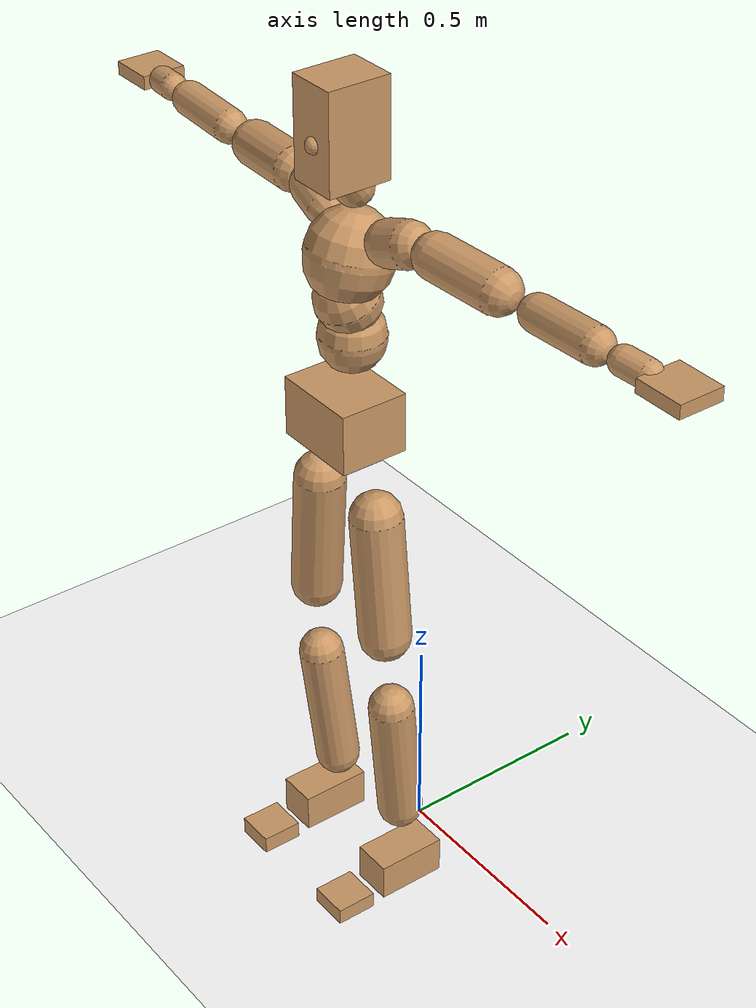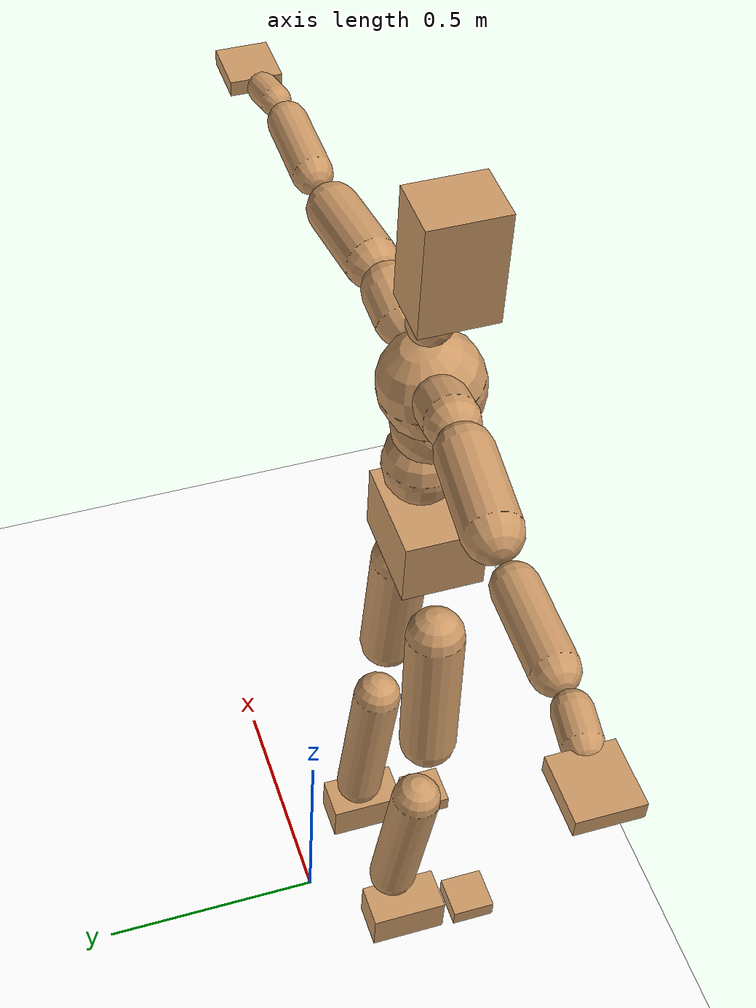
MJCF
<mujoco model="humanoid">
  <option integrator="implicitfast" />

  <visual>
    <global offwidth="1280" offheight="960" />
    <headlight active="1" ambient="0.34 0.34 0.34" diffuse="0.5 0.5 0.5" />
  </visual>

  <default>
    <joint damping="2" stiffness="2" armature="0.01" limited="true" solimplimit="0 .99 .01" />
    <geom condim="1" friction="0.7 0.005 0.0001" solimp=".99 .99 .003" solref="0.015 1" margin="0.001" rgba="0.8 0.6 .4 1" />
    <default class="smplcontact">
      <geom condim="3" friction="1. 0.005 0.0001" solref="0.015 1" solimp="0.98 0.98 0.001" priority="1" />
    </default>
    <default class="stiff_medium">
      <joint stiffness="10" />
    </default>
    <default class="stiff_medium_higher">
      <joint stiffness="50" />
    </default>
    <default class="stiff_high">
      <joint stiffness="100" />
    </default>
  </default>

  <asset>
    <texture type="skybox" builtin="gradient" rgb1="0.99 0.99 0.99" rgb2="0.608 0.828 0.892" width="100" />
    <texture builtin="flat" height="1278" mark="cross" markrgb="1 1 1" name="texgeom" random="0.01" rgb1="0.8 0.6 0.4" rgb2="0.8 0.6 0.4" type="cube" width="127" />
    <texture name="texplane" type="2d" builtin="checker" markrgb="1 1 1" rgb1="0.756 0.772 0.76" rgb2="0.6 0.6 0.6" width="100" height="100" />
    <material name="MatPlane" reflectance="0.5" texture="texplane" texrepeat="1 1" texuniform="true" />
    <material name="geom" texture="texgeom" texuniform="true" />
  </asset>

  <worldbody>
    <light name="tracking_light" pos="0 0 7" dir="0 0 -1" directional="true" cutoff="100" exponent="1" diffuse="1 1 1" specular="0.1 0.1 0.1" mode="trackcom" />
    <camera name="back" pos="0 3 2.4" xyaxes="-1 0 0 0 -1 2" mode="trackcom" />
    <camera name="side" pos="-3 0 2.4" xyaxes="0 -1 0 1 0 2" mode="trackcom" />
    <camera name="front_side" pos="-2.8 -2.8 0.8" xyaxes="0.5 -0.5 0 0.1 0.1 1" mode="trackcom" />
    <geom condim="3" name="floor" pos="0 0 0" rgba="1 1 1 1" size="100 100 .2" type="plane" material="MatPlane" />
    <body name="Pelvis" pos="-0.0018 -0.2233 1.27986" euler="90 0 0">
      <site name="Pelvis" size="0.01" />
      <freejoint name="Pelvis" />
      <geom type="box" pos="-0.0000 -0.0121 -0.0055" size="0.1069 0.0722 0.083" quat="1.0000 0.0000 0.0000 0.0000" density="3165.830099" name="Pelvis" />
      <body name="L_Hip" pos="0.0955625 -0.125675 -0.00935">
        <joint name="L_Hip_x" type="hinge" pos="0 0 0" axis="1 0 0" stiffness="17.19464815217392" range="-160.0 22.92" class="stiff_medium" damping="29.626266823599458" armature="0.022687051049198846"/>
        <joint name="L_Hip_y" type="hinge" pos="0 0 0" axis="0 1 0" stiffness="17.095245217391305" range="-70.0 70.0" class="stiff_medium" damping="16.759081040028263" armature="0.016429527259457143"/>
        <joint name="L_Hip_z" type="hinge" pos="0 0 0" axis="0 0 1" stiffness="17.111722391304347" range="-28.65 90.0" class="stiff_medium" damping="19.707086393727305" armature="0.02269609366308965"/>
        <geom type="capsule" density="2040.816327" fromto="0.0094875 -0.103125 -0.0012375 0.037675 -0.412775 -0.00495" size="0.0615" name="L_Hip" />
        <body name="L_Knee" pos="0.0471625 -0.5159 -0.0061875">
          <joint name="L_Knee_x" type="hinge" pos="0 0 0" axis="1 0 0" range="-5.16 171.89" damping="15.051360594298119" armature="0.02134379736582792" stiffness="3.316880717391304"/>
          <joint name="L_Knee_y" type="hinge" pos="0 0 0" axis="0 1 0" range="-4.58 6.88" damping="12.951808701017507" armature="0.015441578364462116" stiffness="3.3948389347826087"/>
          <joint name="L_Knee_z" type="hinge" pos="0 0 0" axis="0 0 1" range="-6.88 4.58" damping="15.016338430734741" armature="0.02138423024615955" stiffness="3.295220608695652"/>
          <geom type="capsule" density="1234.567901" fromto="-0.0037125 -0.10945 -0.0119625 -0.0149875 -0.4378 -0.048125" size="0.0541" name="L_Knee" />
          <body name="L_Ankle" pos="-0.0187 -0.54725 -0.0600875">
            <joint name="L_Ankle_x" type="hinge" pos="0 0 0" axis="1 0 0" range="-45.84 45.84" class="stiff_medium" damping="8.859849404560176" armature="0.015857944517404486" stiffness="13.750018586956523"/>
            <joint name="L_Ankle_y" type="hinge" pos="0 0 0" axis="0 1 0" range="-74.48 22.92" class="stiff_medium" damping="4.399379435502066" armature="0.015640018623433522" stiffness="13.750011630434784"/>
            <joint name="L_Ankle_z" type="hinge" pos="0 0 0" axis="0 0 1" range="-4.58 4.58" class="stiff_medium" damping="8.387836414114158" armature="0.014213292870694838" stiffness="13.75"/>
            <geom type="box" pos="0.0320375 -0.0328625 0.033275" size="0.0483 0.0464 0.085" quat="1.0000 0.0000 0.0000 0.0000" density="449.071558" name="L_Ankle" class="smplcontact" />
            <body name="L_Toe" pos="0.0363 -0.076725 0.164038">
              <joint name="L_Toe_x" type="hinge" pos="0 0 0" axis="1 0 0" range="-91.67 22.92" armature="0.01338604858615292" damping="2.7133607799892934" stiffness="2.75"/>
              <joint name="L_Toe_y" type="hinge" pos="0 0 0" axis="0 1 0" range="-4.58 4.58" armature="0.012385744586589299" damping="2.610011402776646" stiffness="2.75"/>
              <joint name="L_Toe_z" type="hinge" pos="0 0 0" axis="0 0 1" range="-4.58 4.58" armature="0.010363183740582387" damping="2.387415141386247" stiffness="2.75"/>
              <geom type="box" pos="-0.004125 0.0075625 0.0341" size="0.0478 0.02 0.0496" quat="1.0000 0.0000 0.0000 0.0000" density="423.206892" name="L_Toe" class="smplcontact" />
            </body>
          </body>
        </body>
      </body>
      <body name="R_Hip" pos="-0.0930875 -0.124437 -0.0059125">
        <joint name="R_Hip_x" type="hinge" pos="0 0 0" axis="1 0 0" stiffness="17.19464815217392" range="-160.0 22.92" class="stiff_medium" damping="29.626266823599458" armature="0.022687051049198846"/>
        <joint name="R_Hip_y" type="hinge" pos="0 0 0" axis="0 1 0" stiffness="17.095245217391305" range="-70.0 70.0" class="stiff_medium" damping="16.759081040028263" armature="0.016429527259457143"/>
        <joint name="R_Hip_z" type="hinge" pos="0 0 0" axis="0 0 1" stiffness="17.111722391304347" range="-90.0 28.65" class="stiff_medium" damping="19.707086393727305" armature="0.02269609366308965"/>
        <geom type="capsule" density="2040.816327" fromto="-0.0105875 -0.105188 -0.002475 -0.042075 -0.420887 -0.0097625" size="0.0606" name="R_Hip" />
        <body name="R_Knee" pos="-0.0526625 -0.526075 -0.0122375">
          <joint name="R_Knee_x" type="hinge" pos="0 0 0" axis="1 0 0" range="-5.16 171.89" damping="15.051360594298119" armature="0.02134379736582792" stiffness="3.316880717391304"/>
          <joint name="R_Knee_y" type="hinge" pos="0 0 0" axis="0 1 0" range="-6.88 4.58" damping="12.951808701017507" armature="0.015441578364462116" stiffness="3.3948389347826087"/>
          <joint name="R_Knee_z" type="hinge" pos="0 0 0" axis="0 0 1" range="-4.58 6.88" damping="15.016338430734741" armature="0.02138423024615955" stiffness="3.295220608695652"/>
          <geom type="capsule" density="1234.567901" fromto="0.0044 -0.109587 -0.0116875 0.017325 -0.438213 -0.046475" size="0.0541" name="R_Knee" />
          <body name="R_Ankle" pos="0.021725 -0.5478 -0.0581625">
            <joint name="R_Ankle_x" type="hinge" pos="0 0 0" axis="1 0 0" range="-45.84 45.84" class="stiff_medium" damping="8.859849404560176" armature="0.015857944517404486" stiffness="13.750018586956523"/>
            <joint name="R_Ankle_y" type="hinge" pos="0 0 0" axis="0 1 0" range="-22.92 74.48" class="stiff_medium" damping="4.399379435502066" armature="0.015640018623433522" stiffness="13.750011630434784"/>
            <joint name="R_Ankle_z" type="hinge" pos="0 0 0" axis="0 0 1" range="-4.58 4.58" class="stiff_medium" damping="8.387836414114158" armature="0.014213292870694838" stiffness="13.75"/>
            <geom type="box" pos="-0.02915 -0.023925 0.0352" size="0.0483 0.0478 0.0865" quat="1.0000 0.0000 0.0000 0.0000" density="434.700981" name="R_Ankle" class="smplcontact" />
            <body name="R_Toe" pos="-0.034925 -0.0661375 0.169538">
              <joint name="R_Toe_x" type="hinge" pos="0 0 0" axis="1 0 0" range="-91.67 22.92" armature="0.01338604858615292" damping="2.7133607799892934" stiffness="2.75"/>
              <joint name="R_Toe_y" type="hinge" pos="0 0 0" axis="0 1 0" range="-4.58 4.58" armature="0.012385744586589299" damping="2.610011402776646" stiffness="2.75"/>
              <joint name="R_Toe_z" type="hinge" pos="0 0 0" axis="0 0 1" range="-4.58 4.58" armature="0.010363183740582387" damping="2.387415141386247" stiffness="2.75"/>
              <geom type="box" pos="0.005775 0.0061875 0.0312125" size="0.0479 0.0216 0.0493" quat="1.0000 0.0000 0.0000 0.0000" density="407.384095" name="R_Toe" class="smplcontact" />
            </body>
          </body>
        </body>
      </body>
      <body name="Torso" pos="-0.0025 0.109 -0.0267">
        <joint name="Torso_x" type="hinge" pos="0 0 0" axis="1 0 0" range="-25.78 57.3" class="stiff_medium" damping="15.609562132888078" armature="0.010476265558935364" stiffness="10.336950217391305"/>
        <joint name="Torso_y" type="hinge" pos="0 0 0" axis="0 1 0" range="-57.3 57.3" class="stiff_high" damping="22.83975611757416" armature="0.01266835365649776" stiffness="102.94440652173913"/>
        <joint name="Torso_z" type="hinge" pos="0 0 0" axis="0 0 1" range="-34.38 34.38" class="stiff_high" damping="21.447707844805656" armature="0.011223378132891131" stiffness="102.46562272727273"/>
        <geom type="capsule" density="2040.816327" fromto="0.0025 0.0608 0.0005 0.003 0.0743 0.0006" size="0.0769" name="Torso" />
        <body name="Spine" pos="0.0055 0.1352 0.0011">
          <joint name="Spine_x" type="hinge" pos="0 0 0" axis="1 0 0" stiffness="10.396827173913044" range="-25.78 57.3" class="stiff_medium" damping="15.731663630322835" armature="0.010579519926301025"/>
          <joint name="Spine_y" type="hinge" pos="0 0 0" axis="0 1 0" stiffness="10.39561239130435" range="-57.3 57.3" class="stiff_high" damping="9.187391193291853" armature="0.012686866367473133"/>
          <joint name="Spine_z" type="hinge" pos="0 0 0" axis="0 0 1" stiffness="20.922546956521742" range="-34.38 34.38" class="stiff_high" damping="13.302320763063651" armature="0.011746481097584333"/>
          <geom type="capsule" density="2040.816327" fromto="0.0007 0.0238 0.0114 0.0008 0.0291 0.014" size="0.0755" name="Spine" />
          <body name="Chest" pos="0.0015 0.0529 0.0254">
            <joint name="Chest_x" type="hinge" pos="0 0 0" axis="1 0 0" stiffness="10.56825260869565" range="-25.78 57.3" class="stiff_medium" damping="15.907343229439423" armature="0.01064166541426729"/>
            <joint name="Chest_y" type="hinge" pos="0 0 0" axis="0 1 0" stiffness="11.12741488888889" range="-57.3 57.3" class="stiff_high" damping="9.506741501952312" armature="0.01269080336821822"/>
            <joint name="Chest_z" type="hinge" pos="0 0 0" axis="0 0 1" stiffness="20.978293478260873" range="-34.38 34.38" class="stiff_high" damping="13.450047662421927" armature="0.011976915720374797"/>
            <geom type="capsule" density="2040.816327" fromto="-0.0009 0.0682 -0.0173 -0.001 0.0833 -0.0212" size="0.1002" name="Chest" />
            <body name="Neck" pos="-0.0028 0.2139 -0.0429">
              <joint name="Neck_x" type="hinge" pos="0 0 0" axis="1 0 0" range="-28.65 57.3" class="stiff_medium_higher" damping="10.000000000000027" armature="0.010000000000000054" stiffness="50.0"/>
              <joint name="Neck_y" type="hinge" pos="0 0 0" axis="0 1 0" range="-40.11 40.11" class="stiff_medium_higher" damping="10.0" armature="0.01" stiffness="50.0"/>
              <joint name="Neck_z" type="hinge" pos="0 0 0" axis="0 0 1" range="-40.11 40.11" class="stiff_medium_higher" damping="10.000000000000004" armature="0.01000000000000001" stiffness="50.0"/>
              <geom type="capsule" density="1000" fromto="0.001 0.013 0.0103 0.0041 0.052 0.0411" size="0.0436" name="Neck" />
              <body name="Head" pos="0.0052 0.065 0.0513">
                <joint name="Head_x" type="hinge" pos="0 0 0" axis="1 0 0" range="-28.65 57.3" class="stiff_medium_higher" damping="2.0000000000000027" armature="0.010000000000000026" stiffness="50.0"/>
                <joint name="Head_y" type="hinge" pos="0 0 0" axis="0 1 0" range="-40.11 40.11" class="stiff_medium_higher" damping="2.0" armature="0.010000000000000002" stiffness="50.0"/>
                <joint name="Head_z" type="hinge" pos="0 0 0" axis="0 0 1" range="-40.11 40.11" class="stiff_medium_higher" damping="1.9999999999999978" armature="0.00999999999999998" stiffness="50.0"/>
                <geom type="box" pos="-0.0042 0.0876 -0.0116" size="0.0606 0.1154 0.076" quat="1.0000 0.0000 0.0000 0.0000" density="1018.069894" name="Head" />
                <geom type="capsule" name="nose" size="0.02 0.01" pos="0 0.07 0.05" quat="1 0 0 0" mass="0" contype="0" conaffinity="0" />
              </body>
            </body>
            <body name="L_Thorax" pos="0.08668 0.13387 -0.03751">
              <joint name="L_Thorax_x" type="hinge" pos="0 0 0" axis="1 0 0" range="-10.89 4.58" class="stiff_medium_higher" damping="23.4829506136237" armature="0.011814903262347305" stiffness="58.342518478260864"/>
              <joint name="L_Thorax_y" type="hinge" pos="0 0 0" axis="0 1 0" range="-28.65 17.19" class="stiff_medium_higher" damping="24.43569848553297" armature="0.012759387174304943" stiffness="58.49647717391304"/>
              <joint name="L_Thorax_z" type="hinge" pos="0 0 0" axis="0 0 1" range="-31.51 40.11" class="stiff_medium_higher" damping="24.43606016093474" armature="0.012760243243334086" stiffness="58.49428423913044"/>
              <geom type="capsule" density="1000" fromto="0.02002 0.00671 -0.00198 0.08008 0.02684 -0.00781" size="0.0521" name="L_Thorax" />
              <body name="L_Shoulder" pos="0.1001 0.03355 -0.00979">
                <joint name="L_Shoulder_x" type="hinge" pos="0 0 0" axis="1 0 0" range="-97.4 97.4" class="stiff_medium" damping="6.926446117549333" armature="0.0114361411317486" stiffness="11.653031304347827"/>
                <joint name="L_Shoulder_y" type="hinge" pos="0 0 0" axis="0 1 0" range="-108.86 80.21" class="stiff_medium" damping="7.315768996607566" armature="0.012722359703116888" stiffness="11.685567173913045"/>
                <joint name="L_Shoulder_z" type="hinge" pos="0 0 0" axis="0 0 1" range="-97.4 85.94" class="stiff_medium" damping="7.316312214064135" armature="0.012723435702067633" stiffness="11.686314239130432"/>
                <geom type="capsule" density="1000" fromto="0.05709 -0.00286 -0.00605 0.22847 -0.01122 -0.0242" size="0.0517" name="L_Shoulder" />
                <body name="L_Elbow" pos="0.28556 -0.01408 -0.03025">
                  <joint name="L_Elbow_x" type="hinge" pos="0 0 0" axis="1 0 0" range="-17.19 4.58" damping="5.6014697788336845" armature="0.010847020977713133" stiffness="2.314107347826087"/>
                  <joint name="L_Elbow_y" type="hinge" pos="0 0 0" axis="0 1 0" range="-180.0 17.19" damping="6.023773219083591" armature="0.012542680731684368" stiffness="2.3143916086956517"/>
                  <joint name="L_Elbow_z" type="hinge" pos="0 0 0" axis="0 0 1" range="-100.84 4.58" damping="6.02443057009721" armature="0.012548321640758904" stiffness="2.3138561304347824"/>
                  <geom type="capsule" density="1000" fromto="0.05478 0.00198 -0.00022 0.21934 0.00792 -0.00099" size="0.0405" name="L_Elbow" />
                  <body name="L_Wrist" pos="0.27412 0.0099 -0.00132">
                    <joint name="L_Wrist_x" type="hinge" pos="0 0 0" axis="1 0 0" range="-180.0 22.92" armature="0.010707540477697687" damping="2.1898438931323523" stiffness="2.2392706739130435"/>
                    <joint name="L_Wrist_y" type="hinge" pos="0 0 0" axis="0 1 0" range="-17.19 17.19" armature="0.011962634992803662" damping="2.3180243621137153" stiffness="2.245841717391304"/>
                    <joint name="L_Wrist_z" type="hinge" pos="0 0 0" axis="0 0 1" range="-22.92 22.92" armature="0.012031856829646194" damping="2.3234016674298066" stiffness="2.243292695652174"/>
                    <geom type="capsule" density="1000" fromto="0.01848 -0.00176 -0.0033 0.07392 -0.00715 -0.0132" size="0.0318" name="L_Wrist" class="smplcontact" />
                    <body name="L_Hand" pos="0.0924 -0.00902 -0.01639">
                      <joint name="L_Hand_x" type="hinge" pos="0 0 0" axis="1 0 0" range="-17.19 17.19" armature="0.01009148893709262" damping="2.107191289921433" stiffness="2.2"/>
                      <joint name="L_Hand_y" type="hinge" pos="0 0 0" axis="0 1 0" range="-51.57 51.57" armature="0.011106432471592721" damping="2.2106176258007166" stiffness="2.2"/>
                      <joint name="L_Hand_z" type="hinge" pos="0 0 0" axis="0 0 1" range="-91.67 91.67" armature="0.01137697953796924" damping="2.2373803871283187" stiffness="2.2"/>
                      <geom type="box" pos="0.05423 0.0011 -0.00638" size="0.0585 0.0158 0.0538" quat="1.0000 0.0000 0.0000 0.0000" density="400.552564" name="L_Hand" class="smplcontact" />
                    </body>
                  </body>
                </body>
              </body>
            </body>
            <body name="R_Thorax" pos="-0.08998 0.13068 -0.04246">
              <joint name="R_Thorax_x" type="hinge" pos="0 0 0" axis="1 0 0" range="-10.89 4.58" class="stiff_medium_higher" damping="23.4829506136237" armature="0.011814903262347305" stiffness="58.342518478260864"/>
              <joint name="R_Thorax_y" type="hinge" pos="0 0 0" axis="0 1 0" range="-17.19 28.65" class="stiff_medium_higher" damping="24.43569848553297" armature="0.012759387174304943" stiffness="58.49647717391304"/>
              <joint name="R_Thorax_z" type="hinge" pos="0 0 0" axis="0 0 1" range="-40.11 31.51" class="stiff_medium_higher" damping="24.43606016093474" armature="0.012760243243334086" stiffness="58.49428423913044"/>
              <geom type="capsule" density="1000" fromto="-0.02112 0.00715 -0.00198 -0.08448 0.0286 -0.00803" size="0.0511" name="R_Thorax" />
              <body name="R_Shoulder" pos="-0.1056 0.03586 -0.01001">
                <joint name="R_Shoulder_x" type="hinge" pos="0 0 0" axis="1 0 0" range="-97.4 97.4" class="stiff_medium" damping="6.926446117549333" armature="0.0114361411317486" stiffness="11.653031304347827"/>
                <joint name="R_Shoulder_y" type="hinge" pos="0 0 0" axis="0 1 0" range="-80.21 108.86" class="stiff_medium" damping="7.315768996607566" armature="0.012722359703116888" stiffness="11.685567173913045"/>
                <joint name="R_Shoulder_z" type="hinge" pos="0 0 0" axis="0 0 1" range="-85.94 97.4" class="stiff_medium" damping="7.316312214064135" armature="0.012723435702067633" stiffness="11.686314239130432"/>
                <geom type="capsule" density="1000" fromto="-0.05577 -0.00297 -0.00473 -0.2233 -0.01177 -0.01881" size="0.0531" name="R_Shoulder" />
                <body name="R_Elbow" pos="-0.27907 -0.01463 -0.02354">
                  <joint name="R_Elbow_x" type="hinge" pos="0 0 0" axis="1 0 0" range="-17.19 4.58" damping="5.6014697788336845" armature="0.010847020977713133" stiffness="2.314107347826087"/>
                  <joint name="R_Elbow_y" type="hinge" pos="0 0 0" axis="0 1 0" range="-17.19 180.0" damping="6.023773219083591" armature="0.012542680731684368" stiffness="2.3143916086956517"/>
                  <joint name="R_Elbow_z" type="hinge" pos="0 0 0" axis="0 0 1" range="-4.58 100.84" damping="6.02443057009721" armature="0.012548321640758904" stiffness="2.3138561304347824"/>
                  <geom type="capsule" density="1000" fromto="-0.05621 0.00176 -0.00121 -0.22462 0.00682 -0.00484" size="0.0408" name="R_Elbow" />
                  <body name="R_Wrist" pos="-0.28083 0.00858 -0.00616">
                    <joint name="R_Wrist_x" type="hinge" pos="0 0 0" axis="1 0 0" range="-180.0 22.92" armature="0.010707540477697687" damping="2.1898438931323523" stiffness="2.2392706739130435"/>
                    <joint name="R_Wrist_y" type="hinge" pos="0 0 0" axis="0 1 0" range="-17.19 17.19" armature="0.011962634992803662" damping="2.3180243621137153" stiffness="2.245841717391304"/>
                    <joint name="R_Wrist_z" type="hinge" pos="0 0 0" axis="0 0 1" range="-22.92 22.92" armature="0.012031856829646194" damping="2.3234016674298066" stiffness="2.243292695652174"/>
                    <geom type="capsule" density="1000" fromto="-0.01859 -0.00132 -0.00231 -0.07447 -0.00539 -0.00913" size="0.0326" name="R_Wrist" class="smplcontact" />
                    <body name="R_Hand" pos="-0.09306 -0.00671 -0.01133">
                      <joint name="R_Hand_x" type="hinge" pos="0 0 0" axis="1 0 0" range="-17.19 17.19" armature="0.01009148893709262" damping="2.107191289921433" stiffness="2.2"/>
                      <joint name="R_Hand_y" type="hinge" pos="0 0 0" axis="0 1 0" range="-51.57 51.57" armature="0.011106432471592721" damping="2.2106176258007166" stiffness="2.2"/>
                      <joint name="R_Hand_z" type="hinge" pos="0 0 0" axis="0 0 1" range="-91.67 91.67" armature="0.01137697953796924" damping="2.2373803871283187" stiffness="2.2"/>
                      <geom type="box" pos="-0.05082 -0.00099 -0.00869" size="0.0569 0.0164 0.0546" quat="1.0000 0.0000 0.0000 0.0000" density="403.679611" name="R_Hand" class="smplcontact" />
                    </body>
                  </body>
                </body>
              </body>
            </body>
          </body>
        </body>
      </body>
    </body>
  </worldbody>
  <actuator>
    <general name="L_Hip_x" joint="L_Hip_x" biastype="affine" gainprm="494.0539355695039" biasprm="-370.2433494853903 -309.5036667391305 -3.9501689098132613" ctrllimited="true" ctrlrange="-1 1" forcerange="-619.007333478261 619.007333478261" />
    <general name="L_Hip_y" joint="L_Hip_y" biastype="affine" gainprm="375.944077503908" biasprm="0.0 -307.71441391304353 -3.3518162080056526" ctrllimited="true" ctrlrange="-1 1" forcerange="-615.4288278260871 615.4288278260871" />
    <general name="L_Hip_z" joint="L_Hip_z" biastype="affine" gainprm="318.91969898728996" biasprm="164.90285320581742 -308.0110030434783 -3.9414172787454613" ctrllimited="true" ctrlrange="-1 1" forcerange="-616.0220060869566 616.0220060869566" />
    <general name="L_Knee_x" joint="L_Knee_x" biastype="affine" gainprm="461.2280017867971" biasprm="434.34365850275447 -298.5192645652174 -3.7628401485745298" ctrllimited="true" ctrlrange="-1 1" forcerange="-597.0385291304348 597.0385291304348" />
    <general name="L_Knee_y" joint="L_Knee_y" biastype="affine" gainprm="30.555801030120385" biasprm="6.132490608139344 -305.5355041304348 -3.2379521752543767" ctrllimited="true" ctrlrange="-1 1" forcerange="-611.0710082608696 611.0710082608696" />
    <general name="L_Knee_z" joint="L_Knee_z" biastype="affine" gainprm="29.659170053115986" biasprm="-5.95253849233567 -296.5698547826087 -3.7540846076836853" ctrllimited="true" ctrlrange="-1 1" forcerange="-593.1397095652173 593.1397095652173" />
    <general name="L_Ankle_x" joint="L_Ankle_x" biastype="affine" gainprm="99.00742631382712" biasprm="0.0 -123.7501672826087 -2.953283134853392" ctrllimited="true" ctrlrange="-1 1" forcerange="-247.5003345652174 247.5003345652174" />
    <general name="L_Ankle_y" joint="L_Ankle_y" biastype="affine" gainprm="105.18453800324872" biasprm="-55.68084989165815 -123.75010467391306 -2.9329196236680444" ctrllimited="true" ctrlrange="-1 1" forcerange="-247.50020934782611 247.50020934782611" />
    <general name="L_Ankle_z" joint="L_Ankle_z" biastype="affine" gainprm="9.89208986799086" biasprm="0.0 -123.75 -2.795945471371386" ctrllimited="true" ctrlrange="-1 1" forcerange="-247.5 247.5" />
    <general name="L_Toe_x" joint="L_Toe_x" biastype="affine" gainprm="98.99865309808496" biasprm="-59.39573610693202 -99.0 -1.0853443119957173" ctrllimited="true" ctrlrange="-1 1" forcerange="-198.0 198.0" />
    <general name="L_Toe_y" joint="L_Toe_y" biastype="affine" gainprm="7.913671894392689" biasprm="0.0 -99.0 -1.0440045611106583" ctrllimited="true" ctrlrange="-1 1" forcerange="-198.0 198.0" />
    <general name="L_Toe_z" joint="L_Toe_z" biastype="affine" gainprm="7.913671894392689" biasprm="0.0 -99.0 -0.9549660565544988" ctrllimited="true" ctrlrange="-1 1" forcerange="-198.0 198.0" />
    <general name="R_Hip_x" joint="R_Hip_x" biastype="affine" gainprm="494.0539355695039" biasprm="-370.2433494853903 -309.5036667391305 -3.9501689098132613" ctrllimited="true" ctrlrange="-1 1" forcerange="-619.007333478261 619.007333478261" />
    <general name="R_Hip_y" joint="R_Hip_y" biastype="affine" gainprm="375.944077503908" biasprm="0.0 -307.71441391304353 -3.3518162080056526" ctrllimited="true" ctrlrange="-1 1" forcerange="-615.4288278260871 615.4288278260871" />
    <general name="R_Hip_z" joint="R_Hip_z" biastype="affine" gainprm="318.91969898728996" biasprm="-164.90285320581742 -308.0110030434783 -3.9414172787454613" ctrllimited="true" ctrlrange="-1 1" forcerange="-616.0220060869566 616.0220060869566" />
    <general name="R_Knee_x" joint="R_Knee_x" biastype="affine" gainprm="461.2280017867971" biasprm="434.34365850275447 -298.5192645652174 -3.7628401485745298" ctrllimited="true" ctrlrange="-1 1" forcerange="-597.0385291304348 597.0385291304348" />
    <general name="R_Knee_y" joint="R_Knee_y" biastype="affine" gainprm="30.555801030120385" biasprm="-6.132490608139344 -305.5355041304348 -3.2379521752543767" ctrllimited="true" ctrlrange="-1 1" forcerange="-611.0710082608696 611.0710082608696" />
    <general name="R_Knee_z" joint="R_Knee_z" biastype="affine" gainprm="29.659170053115986" biasprm="5.95253849233567 -296.5698547826087 -3.7540846076836853" ctrllimited="true" ctrlrange="-1 1" forcerange="-593.1397095652173 593.1397095652173" />
    <general name="R_Ankle_x" joint="R_Ankle_x" biastype="affine" gainprm="99.00742631382712" biasprm="0.0 -123.7501672826087 -2.953283134853392" ctrllimited="true" ctrlrange="-1 1" forcerange="-247.5003345652174 247.5003345652174" />
    <general name="R_Ankle_y" joint="R_Ankle_y" biastype="affine" gainprm="105.18453800324872" biasprm="55.68084989165815 -123.75010467391306 -2.9329196236680444" ctrllimited="true" ctrlrange="-1 1" forcerange="-247.50020934782611 247.50020934782611" />
    <general name="R_Ankle_z" joint="R_Ankle_z" biastype="affine" gainprm="9.89208986799086" biasprm="0.0 -123.75 -2.795945471371386" ctrllimited="true" ctrlrange="-1 1" forcerange="-247.5 247.5" />
    <general name="R_Toe_x" joint="R_Toe_x" biastype="affine" gainprm="98.99865309808496" biasprm="-59.39573610693202 -99.0 -1.0853443119957173" ctrllimited="true" ctrlrange="-1 1" forcerange="-198.0 198.0" />
    <general name="R_Toe_y" joint="R_Toe_y" biastype="affine" gainprm="7.913671894392689" biasprm="0.0 -99.0 -1.0440045611106583" ctrllimited="true" ctrlrange="-1 1" forcerange="-198.0 198.0" />
    <general name="R_Toe_z" joint="R_Toe_z" biastype="affine" gainprm="7.913671894392689" biasprm="0.0 -99.0 -0.9549660565544988" ctrllimited="true" ctrlrange="-1 1" forcerange="-198.0 198.0" />
    <general name="Torso_x" joint="Torso_x" biastype="affine" gainprm="179.8653579078609" biasprm="68.23972172912583 -248.08680521739132 -4.162549902103487" ctrllimited="true" ctrlrange="-1 1" forcerange="-372.130207826087 372.130207826087" />
    <general name="Torso_y" joint="Torso_y" biastype="affine" gainprm="247.0847749202386" biasprm="0.0 -247.06657565217392 -4.567951223514832" ctrllimited="true" ctrlrange="-1 1" forcerange="-370.5998634782609 370.5998634782609" />
    <general name="Torso_z" joint="Torso_z" biastype="affine" gainprm="147.56136550236278" biasprm="0.0 -245.91749454545456 -4.289541568961131" ctrllimited="true" ctrlrange="-1 1" forcerange="-368.8762418181818 368.8762418181818" />
    <general name="Spine_x" joint="Spine_x" biastype="affine" gainprm="180.9072309931251" biasprm="68.63500145526362 -249.52385217391304 -4.195110301419422" ctrllimited="true" ctrlrange="-1 1" forcerange="-374.28577826086956 374.28577826086956" />
    <general name="Spine_y" joint="Spine_y" biastype="affine" gainprm="249.51307551819818" biasprm="0.0 -249.49469739130438 -4.593695596645927" ctrllimited="true" ctrlrange="-1 1" forcerange="-374.2420460869566 374.2420460869566" />
    <general name="Spine_z" joint="Spine_z" biastype="affine" gainprm="150.6534346113873" biasprm="0.0 -251.0705634782609 -4.434106921021217" ctrllimited="true" ctrlrange="-1 1" forcerange="-376.60584521739133 376.60584521739133" />
    <general name="Chest_x" joint="Chest_x" biastype="affine" gainprm="183.89007375943817" biasprm="69.76667218220378 -253.63806260869558 -4.24195819451718" ctrllimited="true" ctrlrange="-1 1" forcerange="-380.45709391304337 380.45709391304337" />
    <general name="Chest_y" joint="Chest_y" biastype="affine" gainprm="267.0776291944157" biasprm="0.0 -267.0579573333333 -4.753370750976156" ctrllimited="true" ctrlrange="-1 1" forcerange="-400.586936 400.586936" />
    <general name="Chest_z" joint="Chest_z" biastype="affine" gainprm="151.05483913374735" biasprm="0.0 -251.73952173913048 -4.483349220807309" ctrllimited="true" ctrlrange="-1 1" forcerange="-377.60928260869576 377.60928260869576" />
    <general name="Neck_x" joint="Neck_x" biastype="affine" gainprm="27.00198885760427" biasprm="9.000662952534757 -36.0 -0.8000000000000022" ctrllimited="true" ctrlrange="-1 1" forcerange="-72.0 72.0" />
    <general name="Neck_y" joint="Neck_y" biastype="affine" gainprm="25.20185626709732" biasprm="0.0 -36.0 -0.8" ctrllimited="true" ctrlrange="-1 1" forcerange="-72.0 72.0" />
    <general name="Neck_z" joint="Neck_z" biastype="affine" gainprm="25.20185626709732" biasprm="0.0 -36.0 -0.8000000000000004" ctrllimited="true" ctrlrange="-1 1" forcerange="-72.0 72.0" />
    <general name="Head_x" joint="Head_x" biastype="affine" gainprm="18.001325905069514" biasprm="6.000441968356505 -24.0 -0.8000000000000012" ctrllimited="true" ctrlrange="-1 1" forcerange="-48.0 48.0" />
    <general name="Head_y" joint="Head_y" biastype="affine" gainprm="16.801237511398213" biasprm="0.0 -24.0 -0.8" ctrllimited="true" ctrlrange="-1 1" forcerange="-48.0 48.0" />
    <general name="Head_z" joint="Head_z" biastype="affine" gainprm="16.801237511398213" biasprm="0.0 -24.0 -0.7999999999999992" ctrllimited="true" ctrlrange="-1 1" forcerange="-48.0 48.0" />
    <general name="L_Thorax_x" joint="L_Thorax_x" biastype="affine" gainprm="18.90314648364523" biasprm="-7.710333181111923 -140.02204434782607 -1.8786360490898961" ctrllimited="true" ctrlrange="-1 1" forcerange="-280.04408869565214 280.04408869565214" />
    <general name="L_Thorax_y" joint="L_Thorax_y" biastype="affine" gainprm="56.16075466165698" biasprm="-14.040188665414245 -140.3915452173913 -1.9548558788426378" ctrllimited="true" ctrlrange="-1 1" forcerange="-280.7830904347826 280.7830904347826" />
    <general name="L_Thorax_z" joint="L_Thorax_z" biastype="affine" gainprm="87.74176400724176" biasprm="10.535872248845001 -140.38628217391303 -1.9548848128747793" ctrllimited="true" ctrlrange="-1 1" forcerange="-280.77256434782606 280.77256434782606" />
    <general name="L_Shoulder_x" joint="L_Shoulder_x" biastype="affine" gainprm="95.08597739148922" biasprm="0.0 -55.93455026086957 -1.8470522980131556" ctrllimited="true" ctrlrange="-1 1" forcerange="-111.86910052173914 111.86910052173914" />
    <general name="L_Shoulder_y" joint="L_Shoulder_y" biastype="affine" gainprm="92.54671967874089" biasprm="-14.02371353887939 -56.09072243478262 -1.9508717324286842" ctrllimited="true" ctrlrange="-1 1" forcerange="-112.18144486956524 112.18144486956524" />
    <general name="L_Shoulder_z" joint="L_Shoulder_z" biastype="affine" gainprm="89.74771422860401" biasprm="-5.609844033270449 -56.09430834782608 -1.9510165904171028" ctrllimited="true" ctrlrange="-1 1" forcerange="-112.18861669565216 112.18861669565216" />
    <general name="L_Elbow_x" joint="L_Elbow_x" biastype="affine" gainprm="15.82675221500529" biasprm="-9.167448113514782 -83.30786452173913 -0.8962351646133895" ctrllimited="true" ctrlrange="-1 1" forcerange="-166.61572904347827 166.61572904347827" />
    <general name="L_Elbow_y" joint="L_Elbow_y" biastype="affine" gainprm="143.37439744337277" biasprm="-118.37712687131966 -83.31809791304346 -0.9638037150533745" ctrllimited="true" ctrlrange="-1 1" forcerange="-166.63619582608692 166.63619582608692" />
    <general name="L_Elbow_z" joint="L_Elbow_z" biastype="affine" gainprm="76.63183704247017" biasprm="-69.97325586898292 -83.29882069565217 -0.9639088912155537" ctrllimited="true" ctrlrange="-1 1" forcerange="-166.59764139130434 166.59764139130434" />
    <general name="L_Wrist_x" joint="L_Wrist_x" biastype="affine" gainprm="23.791951641744404" biasprm="-18.41730614964129 -13.43562404347826 -0.875937557252941" ctrllimited="true" ctrlrange="-1 1" forcerange="-26.87124808695652 26.87124808695652" />
    <general name="L_Wrist_y" joint="L_Wrist_y" biastype="affine" gainprm="4.04281286859619" biasprm="0.0 -13.475050304347825 -0.9272097448454861" ctrllimited="true" ctrlrange="-1 1" forcerange="-26.95010060869565 26.95010060869565" />
    <general name="L_Wrist_z" joint="L_Wrist_z" biastype="affine" gainprm="5.384299055319561" biasprm="0.0 -13.459756173913043 -0.9293606669719227" ctrllimited="true" ctrlrange="-1 1" forcerange="-26.919512347826085 26.919512347826085" />
    <general name="L_Hand_x" joint="L_Hand_x" biastype="affine" gainprm="3.9602916991152943" biasprm="0.0 -13.200000000000001 -0.8428765159685732" ctrllimited="true" ctrlrange="-1 1" forcerange="-26.400000000000002 26.400000000000002" />
    <general name="L_Hand_y" joint="L_Hand_y" biastype="affine" gainprm="11.88087509734588" biasprm="0.0 -13.200000000000001 -0.8842470503202867" ctrllimited="true" ctrlrange="-1 1" forcerange="-26.400000000000002 26.400000000000002" />
    <general name="L_Hand_z" joint="L_Hand_z" biastype="affine" gainprm="21.119251894002264" biasprm="0.0 -13.200000000000001 -0.8949521548513275" ctrllimited="true" ctrlrange="-1 1" forcerange="-26.400000000000002 26.400000000000002" />
    <general name="R_Thorax_x" joint="R_Thorax_x" biastype="affine" gainprm="18.90314648364523" biasprm="-7.710333181111923 -140.02204434782607 -1.8786360490898961" ctrllimited="true" ctrlrange="-1 1" forcerange="-280.04408869565214 280.04408869565214" />
    <general name="R_Thorax_y" joint="R_Thorax_y" biastype="affine" gainprm="56.16075466165698" biasprm="14.040188665414236 -140.3915452173913 -1.9548558788426378" ctrllimited="true" ctrlrange="-1 1" forcerange="-280.7830904347826 280.7830904347826" />
    <general name="R_Thorax_z" joint="R_Thorax_z" biastype="affine" gainprm="87.74176400724176" biasprm="-10.535872248845001 -140.38628217391303 -1.9548848128747793" ctrllimited="true" ctrlrange="-1 1" forcerange="-280.77256434782606 280.77256434782606" />
    <general name="R_Shoulder_x" joint="R_Shoulder_x" biastype="affine" gainprm="95.08597739148922" biasprm="0.0 -55.93455026086957 -1.8470522980131556" ctrllimited="true" ctrlrange="-1 1" forcerange="-111.86910052173914 111.86910052173914" />
    <general name="R_Shoulder_y" joint="R_Shoulder_y" biastype="affine" gainprm="92.54671967874089" biasprm="14.02371353887939 -56.09072243478262 -1.9508717324286842" ctrllimited="true" ctrlrange="-1 1" forcerange="-112.18144486956524 112.18144486956524" />
    <general name="R_Shoulder_z" joint="R_Shoulder_z" biastype="affine" gainprm="89.74771422860401" biasprm="5.609844033270437 -56.09430834782608 -1.9510165904171028" ctrllimited="true" ctrlrange="-1 1" forcerange="-112.18861669565216 112.18861669565216" />
    <general name="R_Elbow_x" joint="R_Elbow_x" biastype="affine" gainprm="15.82675221500529" biasprm="-9.167448113514782 -83.30786452173913 -0.8962351646133895" ctrllimited="true" ctrlrange="-1 1" forcerange="-166.61572904347827 166.61572904347827" />
    <general name="R_Elbow_y" joint="R_Elbow_y" biastype="affine" gainprm="143.37439744337277" biasprm="118.37712687131966 -83.31809791304346 -0.9638037150533745" ctrllimited="true" ctrlrange="-1 1" forcerange="-166.63619582608692 166.63619582608692" />
    <general name="R_Elbow_z" joint="R_Elbow_z" biastype="affine" gainprm="76.63183704247017" biasprm="69.97325586898292 -83.29882069565217 -0.9639088912155537" ctrllimited="true" ctrlrange="-1 1" forcerange="-166.59764139130434 166.59764139130434" />
    <general name="R_Wrist_x" joint="R_Wrist_x" biastype="affine" gainprm="23.791951641744404" biasprm="-18.41730614964129 -13.43562404347826 -0.875937557252941" ctrllimited="true" ctrlrange="-1 1" forcerange="-26.87124808695652 26.87124808695652" />
    <general name="R_Wrist_y" joint="R_Wrist_y" biastype="affine" gainprm="4.04281286859619" biasprm="0.0 -13.475050304347825 -0.9272097448454861" ctrllimited="true" ctrlrange="-1 1" forcerange="-26.95010060869565 26.95010060869565" />
    <general name="R_Wrist_z" joint="R_Wrist_z" biastype="affine" gainprm="5.384299055319561" biasprm="0.0 -13.459756173913043 -0.9293606669719227" ctrllimited="true" ctrlrange="-1 1" forcerange="-26.919512347826085 26.919512347826085" />
    <general name="R_Hand_x" joint="R_Hand_x" biastype="affine" gainprm="3.9602916991152943" biasprm="0.0 -13.200000000000001 -0.8428765159685732" ctrllimited="true" ctrlrange="-1 1" forcerange="-26.400000000000002 26.400000000000002" />
    <general name="R_Hand_y" joint="R_Hand_y" biastype="affine" gainprm="11.88087509734588" biasprm="0.0 -13.200000000000001 -0.8842470503202867" ctrllimited="true" ctrlrange="-1 1" forcerange="-26.400000000000002 26.400000000000002" />
    <general name="R_Hand_z" joint="R_Hand_z" biastype="affine" gainprm="21.119251894002264" biasprm="0.0 -13.200000000000001 -0.8949521548513275" ctrllimited="true" ctrlrange="-1 1" forcerange="-26.400000000000002 26.400000000000002" />
  </actuator>
  <contact>
    <exclude body1="Torso" body2="Chest" />
    <exclude body1="Head" body2="Chest" />
    <exclude body1="R_Knee" body2="R_Toe" />
    <exclude body1="R_Knee" body2="L_Ankle" />
    <exclude body1="R_Knee" body2="L_Toe" />
    <exclude body1="L_Knee" body2="L_Toe" />
    <exclude body1="L_Knee" body2="R_Ankle" />
    <exclude body1="L_Knee" body2="R_Toe" />
    <exclude body1="L_Shoulder" body2="Chest" />
    <exclude body1="R_Shoulder" body2="Chest" />
  </contact>
  <sensor>
    <framelinvel name="sensor_Pelvis_framelinvel" objtype="xbody" objname="Pelvis" />
    <framelinvel name="sensor_L_Hip_framelinvel" objtype="xbody" objname="L_Hip" />
    <framelinvel name="sensor_L_Knee_framelinvel" objtype="xbody" objname="L_Knee" />
    <framelinvel name="sensor_L_Ankle_framelinvel" objtype="xbody" objname="L_Ankle" />
    <framelinvel name="sensor_L_Toe_framelinvel" objtype="xbody" objname="L_Toe" />
    <framelinvel name="sensor_R_Hip_framelinvel" objtype="xbody" objname="R_Hip" />
    <framelinvel name="sensor_R_Knee_framelinvel" objtype="xbody" objname="R_Knee" />
    <framelinvel name="sensor_R_Ankle_framelinvel" objtype="xbody" objname="R_Ankle" />
    <framelinvel name="sensor_R_Toe_framelinvel" objtype="xbody" objname="R_Toe" />
    <framelinvel name="sensor_Torso_framelinvel" objtype="xbody" objname="Torso" />
    <framelinvel name="sensor_Spine_framelinvel" objtype="xbody" objname="Spine" />
    <framelinvel name="sensor_Chest_framelinvel" objtype="xbody" objname="Chest" />
    <framelinvel name="sensor_Neck_framelinvel" objtype="xbody" objname="Neck" />
    <framelinvel name="sensor_Head_framelinvel" objtype="xbody" objname="Head" />
    <framelinvel name="sensor_L_Thorax_framelinvel" objtype="xbody" objname="L_Thorax" />
    <framelinvel name="sensor_L_Shoulder_framelinvel" objtype="xbody" objname="L_Shoulder" />
    <framelinvel name="sensor_L_Elbow_framelinvel" objtype="xbody" objname="L_Elbow" />
    <framelinvel name="sensor_L_Wrist_framelinvel" objtype="xbody" objname="L_Wrist" />
    <framelinvel name="sensor_L_Hand_framelinvel" objtype="xbody" objname="L_Hand" />
    <framelinvel name="sensor_R_Thorax_framelinvel" objtype="xbody" objname="R_Thorax" />
    <framelinvel name="sensor_R_Shoulder_framelinvel" objtype="xbody" objname="R_Shoulder" />
    <framelinvel name="sensor_R_Elbow_framelinvel" objtype="xbody" objname="R_Elbow" />
    <framelinvel name="sensor_R_Wrist_framelinvel" objtype="xbody" objname="R_Wrist" />
    <framelinvel name="sensor_R_Hand_framelinvel" objtype="xbody" objname="R_Hand" />
    <frameangvel name="sensor_Pelvis_frameangvel" objtype="xbody" objname="Pelvis" />
    <frameangvel name="sensor_L_Hip_frameangvel" objtype="xbody" objname="L_Hip" />
    <frameangvel name="sensor_L_Knee_frameangvel" objtype="xbody" objname="L_Knee" />
    <frameangvel name="sensor_L_Ankle_frameangvel" objtype="xbody" objname="L_Ankle" />
    <frameangvel name="sensor_L_Toe_frameangvel" objtype="xbody" objname="L_Toe" />
    <frameangvel name="sensor_R_Hip_frameangvel" objtype="xbody" objname="R_Hip" />
    <frameangvel name="sensor_R_Knee_frameangvel" objtype="xbody" objname="R_Knee" />
    <frameangvel name="sensor_R_Ankle_frameangvel" objtype="xbody" objname="R_Ankle" />
    <frameangvel name="sensor_R_Toe_frameangvel" objtype="xbody" objname="R_Toe" />
    <frameangvel name="sensor_Torso_frameangvel" objtype="xbody" objname="Torso" />
    <frameangvel name="sensor_Spine_frameangvel" objtype="xbody" objname="Spine" />
    <frameangvel name="sensor_Chest_frameangvel" objtype="xbody" objname="Chest" />
    <frameangvel name="sensor_Neck_frameangvel" objtype="xbody" objname="Neck" />
    <frameangvel name="sensor_Head_frameangvel" objtype="xbody" objname="Head" />
    <frameangvel name="sensor_L_Thorax_frameangvel" objtype="xbody" objname="L_Thorax" />
    <frameangvel name="sensor_L_Shoulder_frameangvel" objtype="xbody" objname="L_Shoulder" />
    <frameangvel name="sensor_L_Elbow_frameangvel" objtype="xbody" objname="L_Elbow" />
    <frameangvel name="sensor_L_Wrist_frameangvel" objtype="xbody" objname="L_Wrist" />
    <frameangvel name="sensor_L_Hand_frameangvel" objtype="xbody" objname="L_Hand" />
    <frameangvel name="sensor_R_Thorax_frameangvel" objtype="xbody" objname="R_Thorax" />
    <frameangvel name="sensor_R_Shoulder_frameangvel" objtype="xbody" objname="R_Shoulder" />
    <frameangvel name="sensor_R_Elbow_frameangvel" objtype="xbody" objname="R_Elbow" />
    <frameangvel name="sensor_R_Wrist_frameangvel" objtype="xbody" objname="R_Wrist" />
    <frameangvel name="sensor_R_Hand_frameangvel" objtype="xbody" objname="R_Hand" />
    <subtreelinvel name="Chest_subtreelinvel" body="Chest" />
    <gyro name="Pelvis_gyro" site="Pelvis" />
  </sensor>
</mujoco>
